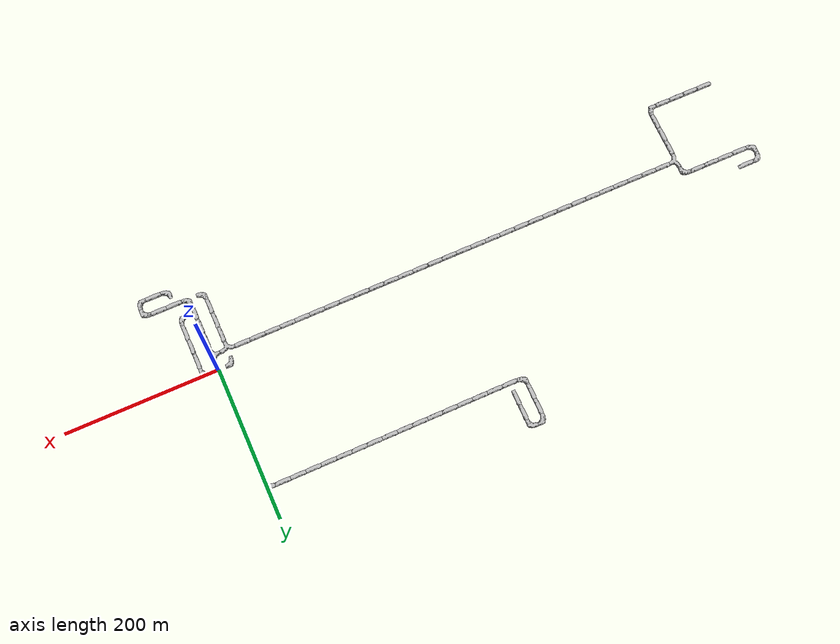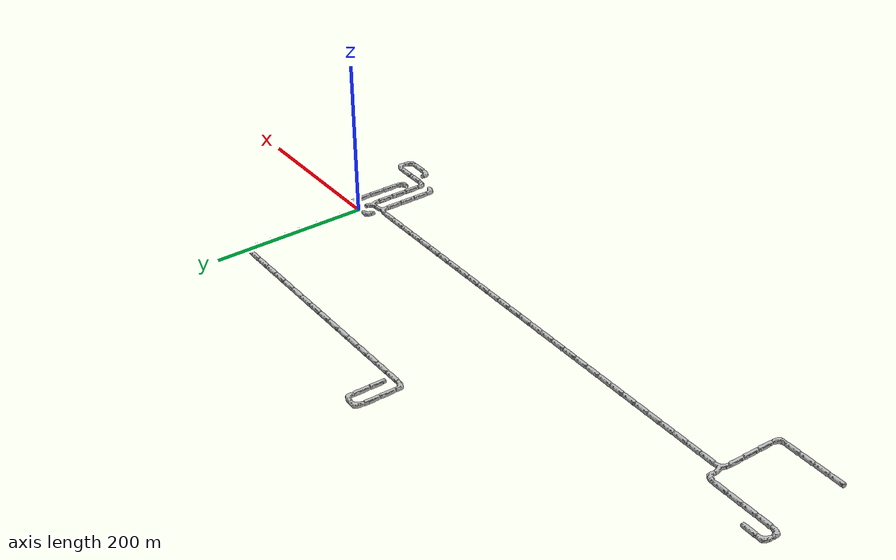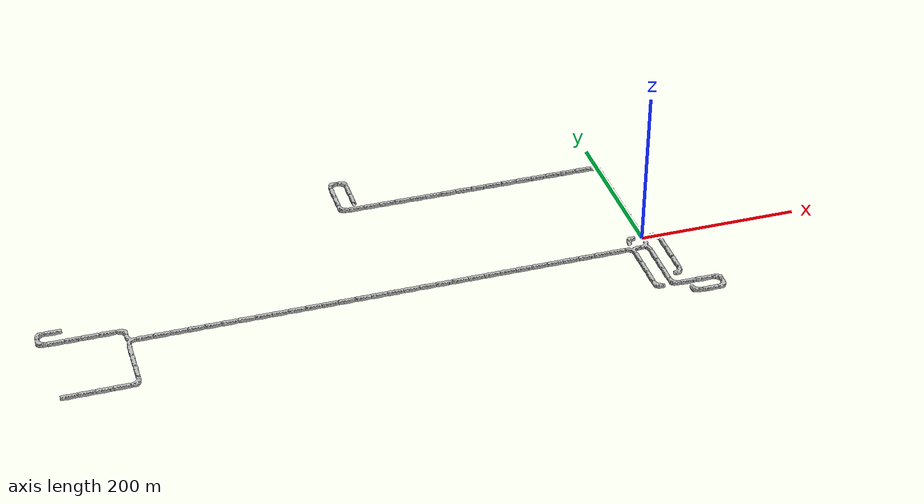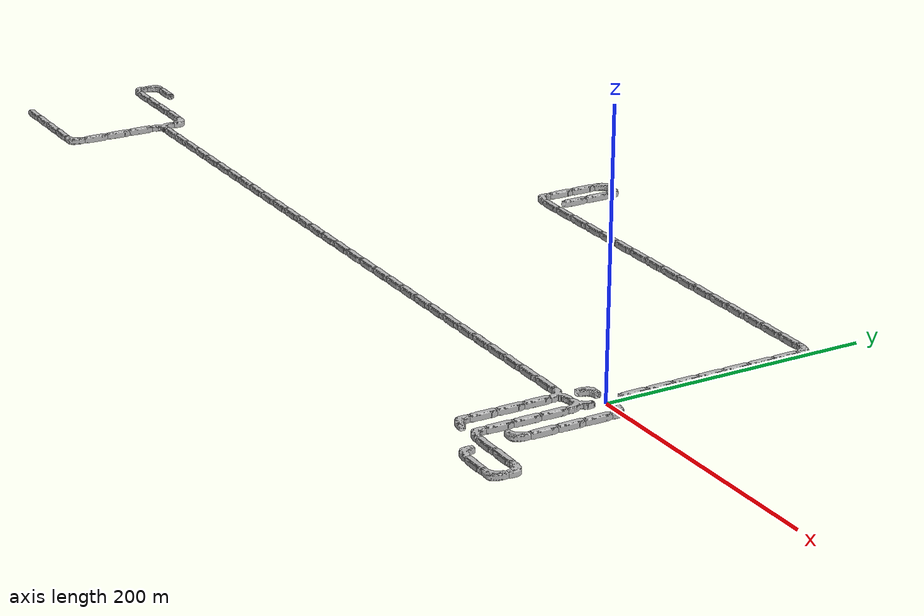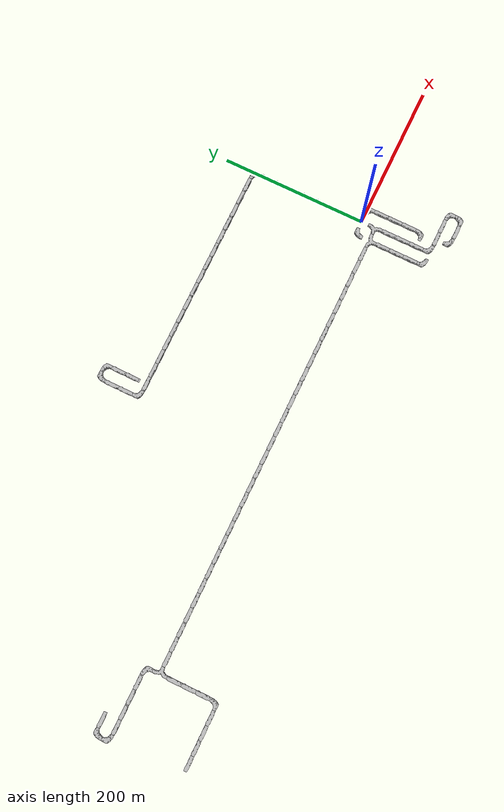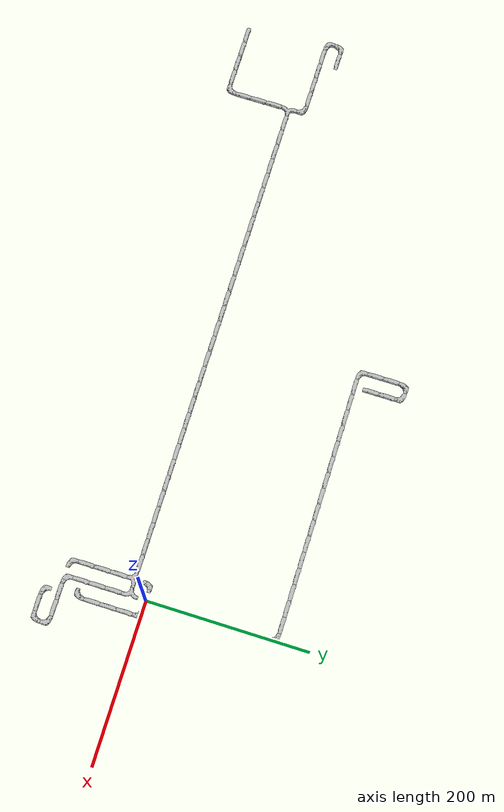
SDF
<sdf version="1.6">
 <world name="cave_2000">
  <include>
   <static>true</static>
   <name>cave_1_0</name>
   <pose>20 0 0 0 0 3.141592653589793</pose>
   <uri>model://cave_L_20m</uri>
  </include>
  <include>
   <static>true</static>
   <name>cave_1_-1</name>
   <pose>20 -20 0 0 0 0.0</pose>
   <uri>model://cave_straight_20m</uri>
  </include>
  <include>
   <static>true</static>
   <name>cave_1_-2</name>
   <pose>20 -40 0 0 0 0.0</pose>
   <uri>model://cave_straight_20m</uri>
  </include>
  <include>
   <static>true</static>
   <name>cave_1_-3</name>
   <pose>20 -60 0 0 0 0.0</pose>
   <uri>model://cave_straight_20m</uri>
  </include>
  <include>
   <static>true</static>
   <name>cave_1_-4</name>
   <pose>20 -80 0 0 0 1.5707963267948966</pose>
   <uri>model://cave_L_20m</uri>
  </include>
  <include>
   <static>true</static>
   <name>cave_0_-1</name>
   <pose>0 -20 0 0 0 1.5707963267948966</pose>
   <uri>model://cave_3way_20m</uri>
  </include>
  <include>
   <static>true</static>
   <name>cave_0_-2</name>
   <pose>0 -40 0 0 0 0.0</pose>
   <uri>model://cave_straight_20m</uri>
  </include>
  <include>
   <static>true</static>
   <name>cave_0_-3</name>
   <pose>0 -60 0 0 0 0.0</pose>
   <uri>model://cave_straight_20m</uri>
  </include>
  <include>
   <static>true</static>
   <name>cave_0_-4</name>
   <pose>0 -80 0 0 0 0.0</pose>
   <uri>model://cave_straight_20m</uri>
  </include>
  <include>
   <static>true</static>
   <name>cave_0_-5</name>
   <pose>0 -100 0 0 0 0.0</pose>
   <uri>model://cave_L_20m</uri>
  </include>
  <include>
   <static>true</static>
   <name>cave_1_-5</name>
   <pose>20 -100 0 0 0 1.5707963267948966</pose>
   <uri>model://cave_straight_20m</uri>
  </include>
  <include>
   <static>true</static>
   <name>cave_2_-5</name>
   <pose>40 -100 0 0 0 1.5707963267948966</pose>
   <uri>model://cave_straight_20m</uri>
  </include>
  <include>
   <static>true</static>
   <name>cave_3_-5</name>
   <pose>60 -100 0 0 0 3.141592653589793</pose>
   <uri>model://cave_L_20m</uri>
  </include>
  <include>
   <static>true</static>
   <name>cave_3_-6</name>
   <pose>60 -120 0 0 0 1.5707963267948966</pose>
   <uri>model://cave_L_20m</uri>
  </include>
  <include>
   <static>true</static>
   <name>cave_2_-6</name>
   <pose>40 -120 0 0 0 1.5707963267948966</pose>
   <uri>model://cave_straight_20m</uri>
  </include>
  <include>
   <static>true</static>
   <name>cave_1_-6</name>
   <pose>20 -120 0 0 0 0.0</pose>
   <uri>model://cave_L_20m</uri>
  </include>
  <include>
   <static>true</static>
   <name>cave_-1_-1</name>
   <pose>-20 -20 0 0 0 3.141592653589793</pose>
   <uri>model://cave_3way_20m</uri>
  </include>
  <include>
   <static>true</static>
   <name>cave_-1_-2</name>
   <pose>-20 -40 0 0 0 0.0</pose>
   <uri>model://cave_straight_20m</uri>
  </include>
  <include>
   <static>true</static>
   <name>cave_-1_-3</name>
   <pose>-20 -60 0 0 0 0.0</pose>
   <uri>model://cave_straight_20m</uri>
  </include>
  <include>
   <static>true</static>
   <name>cave_-1_-4</name>
   <pose>-20 -80 0 0 0 0.0</pose>
   <uri>model://cave_straight_20m</uri>
  </include>
  <include>
   <static>true</static>
   <name>cave_-1_-5</name>
   <pose>-20 -100 0 0 0 0.0</pose>
   <uri>model://cave_L_20m</uri>
  </include>
  <include>
   <static>true</static>
   <name>cave_-2_-1</name>
   <pose>-40 -20 0 0 0 1.5707963267948966</pose>
   <uri>model://cave_straight_20m</uri>
  </include>
  <include>
   <static>true</static>
   <name>cave_-3_-1</name>
   <pose>-60 -20 0 0 0 1.5707963267948966</pose>
   <uri>model://cave_straight_20m</uri>
  </include>
  <include>
   <static>true</static>
   <name>cave_-4_-1</name>
   <pose>-80 -20 0 0 0 1.5707963267948966</pose>
   <uri>model://cave_straight_20m</uri>
  </include>
  <include>
   <static>true</static>
   <name>cave_-5_-1</name>
   <pose>-100 -20 0 0 0 1.5707963267948966</pose>
   <uri>model://cave_straight_20m</uri>
  </include>
  <include>
   <static>true</static>
   <name>cave_-6_-1</name>
   <pose>-120 -20 0 0 0 1.5707963267948966</pose>
   <uri>model://cave_straight_20m</uri>
  </include>
  <include>
   <static>true</static>
   <name>cave_-7_-1</name>
   <pose>-140 -20 0 0 0 1.5707963267948966</pose>
   <uri>model://cave_straight_20m</uri>
  </include>
  <include>
   <static>true</static>
   <name>cave_-8_-1</name>
   <pose>-160 -20 0 0 0 1.5707963267948966</pose>
   <uri>model://cave_straight_20m</uri>
  </include>
  <include>
   <static>true</static>
   <name>cave_-9_-1</name>
   <pose>-180 -20 0 0 0 1.5707963267948966</pose>
   <uri>model://cave_straight_20m</uri>
  </include>
  <include>
   <static>true</static>
   <name>cave_-10_-1</name>
   <pose>-200 -20 0 0 0 1.5707963267948966</pose>
   <uri>model://cave_straight_20m</uri>
  </include>
  <include>
   <static>true</static>
   <name>cave_-11_-1</name>
   <pose>-220 -20 0 0 0 1.5707963267948966</pose>
   <uri>model://cave_straight_20m</uri>
  </include>
  <include>
   <static>true</static>
   <name>cave_-12_-1</name>
   <pose>-240 -20 0 0 0 1.5707963267948966</pose>
   <uri>model://cave_straight_20m</uri>
  </include>
  <include>
   <static>true</static>
   <name>cave_-13_-1</name>
   <pose>-260 -20 0 0 0 1.5707963267948966</pose>
   <uri>model://cave_straight_20m</uri>
  </include>
  <include>
   <static>true</static>
   <name>cave_-14_-1</name>
   <pose>-280 -20 0 0 0 1.5707963267948966</pose>
   <uri>model://cave_straight_20m</uri>
  </include>
  <include>
   <static>true</static>
   <name>cave_-15_-1</name>
   <pose>-300 -20 0 0 0 1.5707963267948966</pose>
   <uri>model://cave_straight_20m</uri>
  </include>
  <include>
   <static>true</static>
   <name>cave_-16_-1</name>
   <pose>-320 -20 0 0 0 1.5707963267948966</pose>
   <uri>model://cave_straight_20m</uri>
  </include>
  <include>
   <static>true</static>
   <name>cave_-17_-1</name>
   <pose>-340 -20 0 0 0 1.5707963267948966</pose>
   <uri>model://cave_straight_20m</uri>
  </include>
  <include>
   <static>true</static>
   <name>cave_-18_-1</name>
   <pose>-360 -20 0 0 0 1.5707963267948966</pose>
   <uri>model://cave_straight_20m</uri>
  </include>
  <include>
   <static>true</static>
   <name>cave_-19_-1</name>
   <pose>-380 -20 0 0 0 1.5707963267948966</pose>
   <uri>model://cave_straight_20m</uri>
  </include>
  <include>
   <static>true</static>
   <name>cave_-20_-1</name>
   <pose>-400 -20 0 0 0 1.5707963267948966</pose>
   <uri>model://cave_straight_20m</uri>
  </include>
  <include>
   <static>true</static>
   <name>cave_-21_-1</name>
   <pose>-420 -20 0 0 0 1.5707963267948966</pose>
   <uri>model://cave_straight_20m</uri>
  </include>
  <include>
   <static>true</static>
   <name>cave_-22_-1</name>
   <pose>-440 -20 0 0 0 1.5707963267948966</pose>
   <uri>model://cave_straight_20m</uri>
  </include>
  <include>
   <static>true</static>
   <name>cave_-23_-1</name>
   <pose>-460 -20 0 0 0 1.5707963267948966</pose>
   <uri>model://cave_straight_20m</uri>
  </include>
  <include>
   <static>true</static>
   <name>cave_-24_-1</name>
   <pose>-480 -20 0 0 0 1.5707963267948966</pose>
   <uri>model://cave_straight_20m</uri>
  </include>
  <include>
   <static>true</static>
   <name>cave_-25_-1</name>
   <pose>-500 -20 0 0 0 1.5707963267948966</pose>
   <uri>model://cave_straight_20m</uri>
  </include>
  <include>
   <static>true</static>
   <name>cave_-26_-1</name>
   <pose>-520 -20 0 0 0 1.5707963267948966</pose>
   <uri>model://cave_straight_20m</uri>
  </include>
  <include>
   <static>true</static>
   <name>cave_-27_-1</name>
   <pose>-540 -20 0 0 0 1.5707963267948966</pose>
   <uri>model://cave_straight_20m</uri>
  </include>
  <include>
   <static>true</static>
   <name>cave_-28_-1</name>
   <pose>-560 -20 0 0 0 1.5707963267948966</pose>
   <uri>model://cave_straight_20m</uri>
  </include>
  <include>
   <static>true</static>
   <name>cave_-29_-1</name>
   <pose>-580 -20 0 0 0 1.5707963267948966</pose>
   <uri>model://cave_straight_20m</uri>
  </include>
  <include>
   <static>true</static>
   <name>cave_-30_-1</name>
   <pose>-600 -20 0 0 0 1.5707963267948966</pose>
   <uri>model://cave_straight_20m</uri>
  </include>
  <include>
   <static>true</static>
   <name>cave_-31_-1</name>
   <pose>-620 -20 0 0 0 1.5707963267948966</pose>
   <uri>model://cave_straight_20m</uri>
  </include>
  <include>
   <static>true</static>
   <name>cave_-32_-1</name>
   <pose>-640 -20 0 0 0 -1.5707963267948966</pose>
   <uri>model://cave_3way_20m</uri>
  </include>
  <include>
   <static>true</static>
   <name>cave_-32_-2</name>
   <pose>-640 -40 0 0 0 0.0</pose>
   <uri>model://cave_straight_20m</uri>
  </include>
  <include>
   <static>true</static>
   <name>cave_-32_-3</name>
   <pose>-640 -60 0 0 0 0.0</pose>
   <uri>model://cave_straight_20m</uri>
  </include>
  <include>
   <static>true</static>
   <name>cave_-32_-4</name>
   <pose>-640 -80 0 0 0 0.0</pose>
   <uri>model://cave_straight_20m</uri>
  </include>
  <include>
   <static>true</static>
   <name>cave_-32_-5</name>
   <pose>-640 -100 0 0 0 1.5707963267948966</pose>
   <uri>model://cave_L_20m</uri>
  </include>
  <include>
   <static>true</static>
   <name>cave_-33_-5</name>
   <pose>-660 -100 0 0 0 1.5707963267948966</pose>
   <uri>model://cave_straight_20m</uri>
  </include>
  <include>
   <static>true</static>
   <name>cave_-34_-5</name>
   <pose>-680 -100 0 0 0 1.5707963267948966</pose>
   <uri>model://cave_straight_20m</uri>
  </include>
  <include>
   <static>true</static>
   <name>cave_-35_-5</name>
   <pose>-700 -100 0 0 0 1.5707963267948966</pose>
   <uri>model://cave_straight_20m</uri>
  </include>
  <include>
   <static>true</static>
   <name>cave_-36_-5</name>
   <pose>-720 -100 0 0 0 1.5707963267948966</pose>
   <uri>model://cave_straight_20m</uri>
  </include>
  <include>
   <static>true</static>
   <name>cave_-32_0</name>
   <pose>-640 0 0 0 0 3.141592653589793</pose>
   <uri>model://cave_L_20m</uri>
  </include>
  <include>
   <static>true</static>
   <name>cave_-33_0</name>
   <pose>-660 0 0 0 0 1.5707963267948966</pose>
   <uri>model://cave_straight_20m</uri>
  </include>
  <include>
   <static>true</static>
   <name>cave_-34_0</name>
   <pose>-680 0 0 0 0 1.5707963267948966</pose>
   <uri>model://cave_straight_20m</uri>
  </include>
  <include>
   <static>true</static>
   <name>cave_-35_0</name>
   <pose>-700 0 0 0 0 1.5707963267948966</pose>
   <uri>model://cave_straight_20m</uri>
  </include>
  <include>
   <static>true</static>
   <name>cave_-36_0</name>
   <pose>-720 0 0 0 0 1.5707963267948966</pose>
   <uri>model://cave_straight_20m</uri>
  </include>
  <include>
   <static>true</static>
   <name>cave_-37_0</name>
   <pose>-740 0 0 0 0 0.0</pose>
   <uri>model://cave_L_20m</uri>
  </include>
  <include>
   <static>true</static>
   <name>cave_-37_1</name>
   <pose>-740 20 0 0 0 -1.5707963267948966</pose>
   <uri>model://cave_L_20m</uri>
  </include>
  <include>
   <static>true</static>
   <name>cave_-36_1</name>
   <pose>-720 20 0 0 0 1.5707963267948966</pose>
   <uri>model://cave_straight_20m</uri>
  </include>
  <include>
   <static>true</static>
   <name>cave_-1_0</name>
   <pose>-20 0 0 0 0 -1.5707963267948966</pose>
   <uri>model://cave_L_20m</uri>
  </include>
  <include>
   <static>true</static>
   <name>cave_0_1</name>
   <pose>0 20 0 0 0 0.0</pose>
   <uri>model://cave_straight_20m</uri>
  </include>
  <include>
   <static>true</static>
   <name>cave_0_2</name>
   <pose>0 40 0 0 0 0.0</pose>
   <uri>model://cave_straight_20m</uri>
  </include>
  <include>
   <static>true</static>
   <name>cave_0_3</name>
   <pose>0 60 0 0 0 0.0</pose>
   <uri>model://cave_straight_20m</uri>
  </include>
  <include>
   <static>true</static>
   <name>cave_0_4</name>
   <pose>0 80 0 0 0 0.0</pose>
   <uri>model://cave_straight_20m</uri>
  </include>
  <include>
   <static>true</static>
   <name>cave_0_5</name>
   <pose>0 100 0 0 0 0.0</pose>
   <uri>model://cave_straight_20m</uri>
  </include>
  <include>
   <static>true</static>
   <name>cave_0_6</name>
   <pose>0 120 0 0 0 0.0</pose>
   <uri>model://cave_straight_20m</uri>
  </include>
  <include>
   <static>true</static>
   <name>cave_0_7</name>
   <pose>0 140 0 0 0 0.0</pose>
   <uri>model://cave_straight_20m</uri>
  </include>
  <include>
   <static>true</static>
   <name>cave_0_8</name>
   <pose>0 160 0 0 0 3.141592653589793</pose>
   <uri>model://cave_L_20m</uri>
  </include>
  <include>
   <static>true</static>
   <name>cave_-1_8</name>
   <pose>-20 160 0 0 0 1.5707963267948966</pose>
   <uri>model://cave_straight_20m</uri>
  </include>
  <include>
   <static>true</static>
   <name>cave_-2_8</name>
   <pose>-40 160 0 0 0 1.5707963267948966</pose>
   <uri>model://cave_straight_20m</uri>
  </include>
  <include>
   <static>true</static>
   <name>cave_-3_8</name>
   <pose>-60 160 0 0 0 1.5707963267948966</pose>
   <uri>model://cave_straight_20m</uri>
  </include>
  <include>
   <static>true</static>
   <name>cave_-4_8</name>
   <pose>-80 160 0 0 0 1.5707963267948966</pose>
   <uri>model://cave_straight_20m</uri>
  </include>
  <include>
   <static>true</static>
   <name>cave_-5_8</name>
   <pose>-100 160 0 0 0 1.5707963267948966</pose>
   <uri>model://cave_straight_20m</uri>
  </include>
  <include>
   <static>true</static>
   <name>cave_-6_8</name>
   <pose>-120 160 0 0 0 1.5707963267948966</pose>
   <uri>model://cave_straight_20m</uri>
  </include>
  <include>
   <static>true</static>
   <name>cave_-7_8</name>
   <pose>-140 160 0 0 0 1.5707963267948966</pose>
   <uri>model://cave_straight_20m</uri>
  </include>
  <include>
   <static>true</static>
   <name>cave_-8_8</name>
   <pose>-160 160 0 0 0 1.5707963267948966</pose>
   <uri>model://cave_straight_20m</uri>
  </include>
  <include>
   <static>true</static>
   <name>cave_-9_8</name>
   <pose>-180 160 0 0 0 1.5707963267948966</pose>
   <uri>model://cave_straight_20m</uri>
  </include>
  <include>
   <static>true</static>
   <name>cave_-10_8</name>
   <pose>-200 160 0 0 0 1.5707963267948966</pose>
   <uri>model://cave_straight_20m</uri>
  </include>
  <include>
   <static>true</static>
   <name>cave_-11_8</name>
   <pose>-220 160 0 0 0 1.5707963267948966</pose>
   <uri>model://cave_straight_20m</uri>
  </include>
  <include>
   <static>true</static>
   <name>cave_-12_8</name>
   <pose>-240 160 0 0 0 1.5707963267948966</pose>
   <uri>model://cave_straight_20m</uri>
  </include>
  <include>
   <static>true</static>
   <name>cave_-13_8</name>
   <pose>-260 160 0 0 0 1.5707963267948966</pose>
   <uri>model://cave_straight_20m</uri>
  </include>
  <include>
   <static>true</static>
   <name>cave_-14_8</name>
   <pose>-280 160 0 0 0 1.5707963267948966</pose>
   <uri>model://cave_straight_20m</uri>
  </include>
  <include>
   <static>true</static>
   <name>cave_-15_8</name>
   <pose>-300 160 0 0 0 1.5707963267948966</pose>
   <uri>model://cave_straight_20m</uri>
  </include>
  <include>
   <static>true</static>
   <name>cave_-16_8</name>
   <pose>-320 160 0 0 0 1.5707963267948966</pose>
   <uri>model://cave_straight_20m</uri>
  </include>
  <include>
   <static>true</static>
   <name>cave_-17_8</name>
   <pose>-340 160 0 0 0 0.0</pose>
   <uri>model://cave_L_20m</uri>
  </include>
  <include>
   <static>true</static>
   <name>cave_-17_9</name>
   <pose>-340 180 0 0 0 0.0</pose>
   <uri>model://cave_straight_20m</uri>
  </include>
  <include>
   <static>true</static>
   <name>cave_-17_10</name>
   <pose>-340 200 0 0 0 0.0</pose>
   <uri>model://cave_straight_20m</uri>
  </include>
  <include>
   <static>true</static>
   <name>cave_-17_11</name>
   <pose>-340 220 0 0 0 -1.5707963267948966</pose>
   <uri>model://cave_L_20m</uri>
  </include>
  <include>
   <static>true</static>
   <name>cave_-16_11</name>
   <pose>-320 220 0 0 0 3.141592653589793</pose>
   <uri>model://cave_L_20m</uri>
  </include>
  <include>
   <static>true</static>
   <name>cave_-16_10</name>
   <pose>-320 200 0 0 0 0.0</pose>
   <uri>model://cave_straight_20m</uri>
  </include>
  <include>
   <static>true</static>
   <name>cave_-16_9</name>
   <pose>-320 180 0 0 0 0.0</pose>
   <uri>model://cave_straight_20m</uri>
  </include>
 </world>
</sdf>

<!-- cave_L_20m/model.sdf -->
<sdf version="1.6">
  <model name="cave_L_20m">
    <static>true</static>
    <link name="base">
      <pose>0 0 0 0 0 0</pose>
      <collision name="base_collision">
        <pose>0 0 0 0 0 0</pose>
        <geometry>
          <mesh>
            <uri>model://cave_L_20m/meshes/cave_L_20m.dae</uri>
          </mesh>
        </geometry>
        <surface>
          <contact>
             <collide_bitmask>0xffff</collide_bitmask>
          </contact>
          <friction>
            <ode>
              <mu>100</mu>
              <mu2>50</mu2>
            </ode>
          </friction>
        </surface>
      </collision>
      <visual name="base_visual">
        <pose>0 0 0 0 0 0</pose>
        <cast_shadows>false</cast_shadows>
        <geometry>
          <mesh>
            <uri>model://cave_L_20m/meshes/cave_L_20m.dae</uri>
          </mesh>
        </geometry>
      </visual>
    </link>
  </model>
</sdf>

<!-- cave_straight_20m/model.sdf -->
<sdf version="1.6">
  <model name="cave_straight_20m">
    <static>true</static>
    <link name="base">
      <pose>0 0 0 0 0 0</pose>
      <collision name="base_collision">
        <pose>0 0 0 0 0 0</pose>
        <geometry>
          <mesh>
            <uri>model://cave_straight_20m/meshes/cave_straight_20m.dae</uri>
          </mesh>
        </geometry>
        <surface>
          <contact>
             <collide_bitmask>0xffff</collide_bitmask>
          </contact>
          <friction>
            <ode>
              <mu>100</mu>
              <mu2>50</mu2>
            </ode>
          </friction>
        </surface>
      </collision>
      <visual name="base_visual">
        <pose>0 0 0 0 0 0</pose>
        <cast_shadows>false</cast_shadows>
        <geometry>
          <mesh>
            <uri>model://cave_straight_20m/meshes/cave_straight_20m.dae</uri>
          </mesh>
        </geometry>
      </visual>
    </link>
  </model>
</sdf>

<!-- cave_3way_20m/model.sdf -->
<sdf version="1.6">
  <model name="cave_3way_20m">
    <static>true</static>
    <link name="base">
      <pose>0 0 0 0 0 0</pose>
      <collision name="base_collision">
        <pose>0 0 0 0 0 0</pose>
        <geometry>
          <mesh>
            <uri>model://cave_3way_20m/meshes/cave_3way_20m.dae</uri>
          </mesh>
        </geometry>
        <surface>
          <contact>
             <collide_bitmask>0xffff</collide_bitmask>
          </contact>
          <friction>
            <ode>
              <mu>100</mu>
              <mu2>50</mu2>
            </ode>
          </friction>
        </surface>
      </collision>
      <visual name="base_visual">
        <cast_shadows>false</cast_shadows>
        <pose>0 0 0 0 0 0</pose>
        <geometry>
          <mesh>
            <uri>model://cave_3way_20m/meshes/cave_3way_20m.dae</uri>
          </mesh>
        </geometry>
      </visual>
    </link>
  </model>
</sdf>
